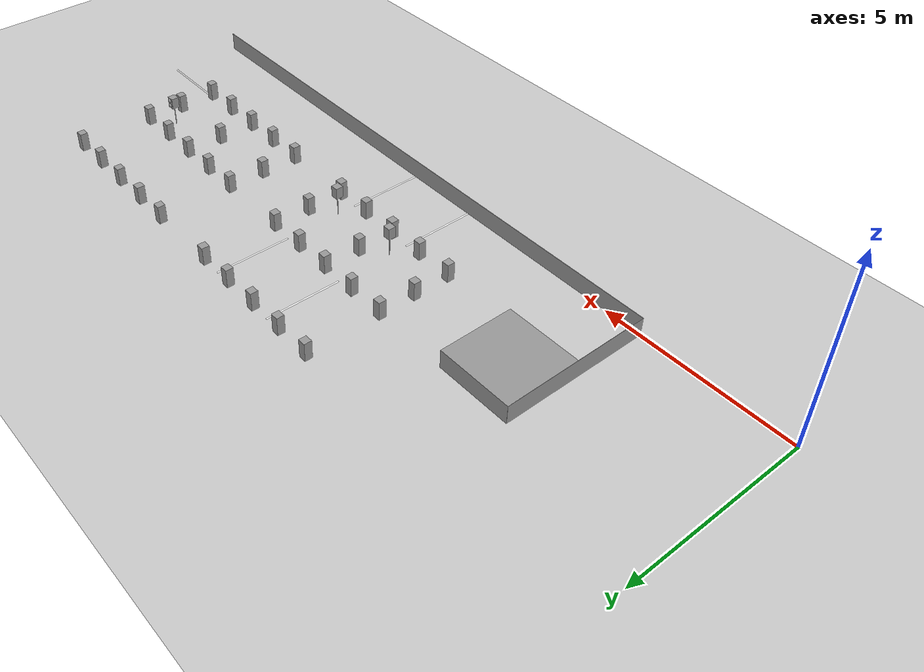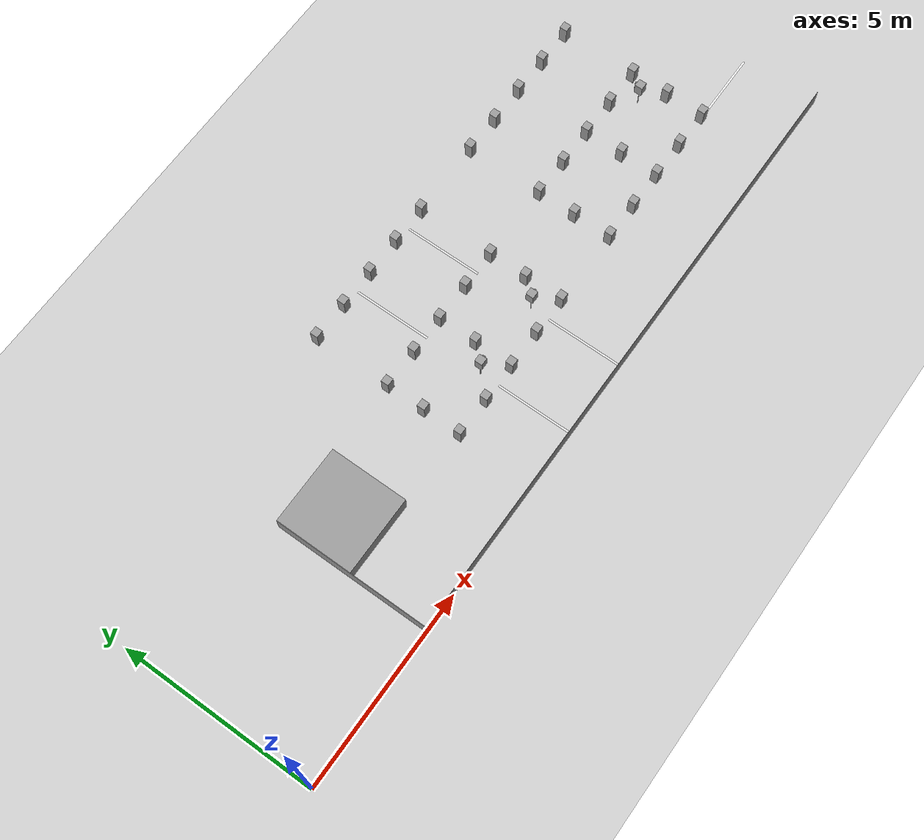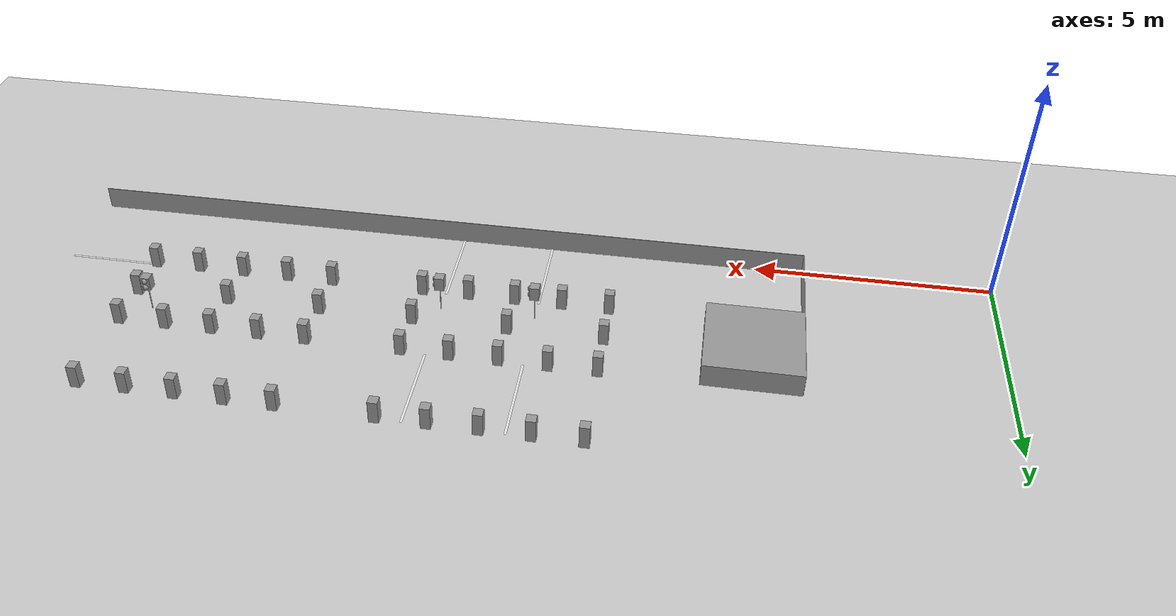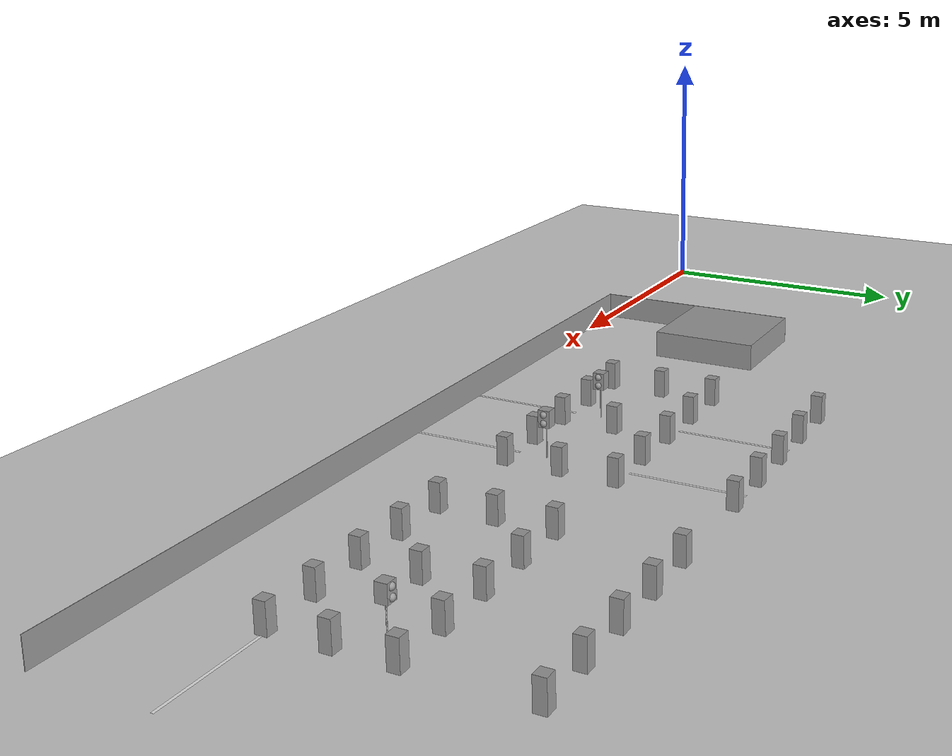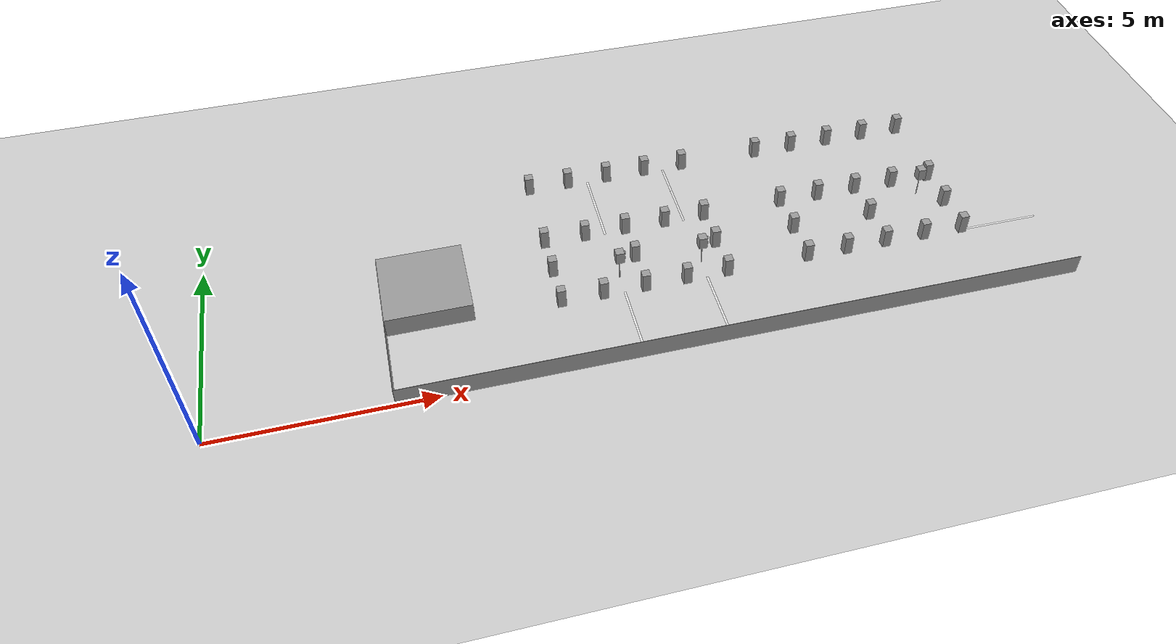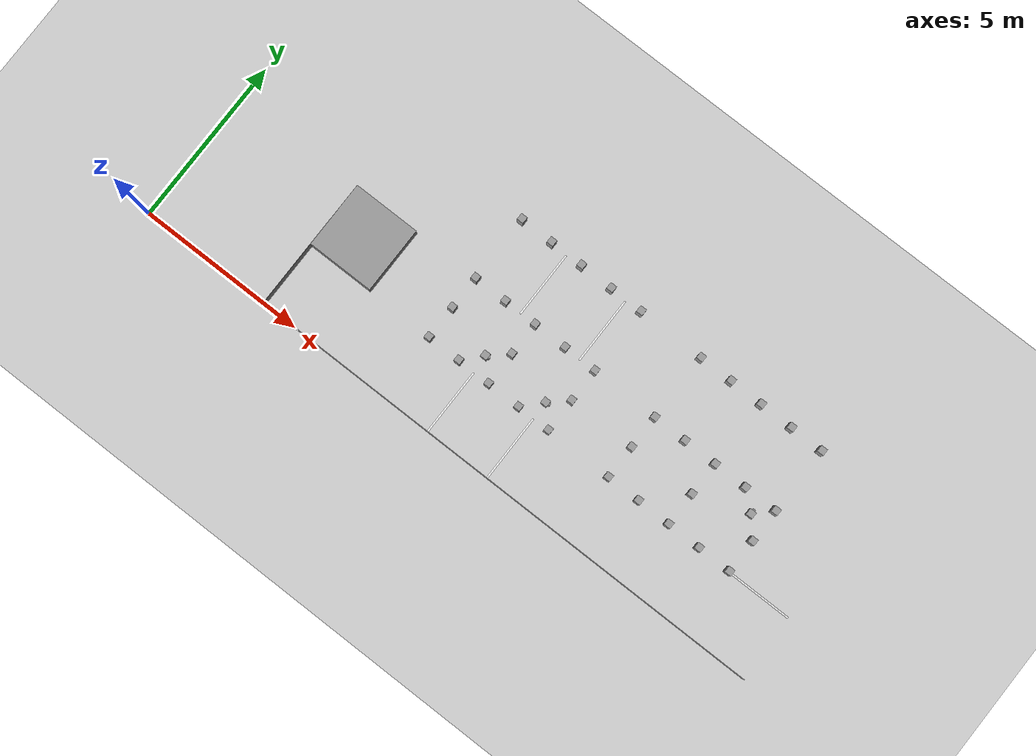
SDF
<sdf version="1.6">
 <world name="default">
  <model name="box_98">
   <pose>5.0 3.0 0.25 0 0 0</pose>
   <link name="link">
    <inertial>
     <mass>1</mass>
     <inertia><ixx>0</ixx><ixy>0</ixy><ixz>0</ixz><iyy>0</iyy><iyz>0</iyz><izz>0</izz></inertia>
    </inertial>
    <collision name="collision"><geometry><box><size>2.0 2.0 0.5</size></box></geometry></collision>
    <visual name="visual">
     <geometry><box><size>2.0 2.0 0.5</size></box></geometry>
     <material>
      <script><name>Gazebo/Grey</name><uri>file://media/materials/scripts/gazebo.material</uri></script>
     </material>
    </visual>
   </link>
   <static>1</static>
  </model>
  <model name="box_96">
   <pose>18.0 6.0 0.25 0 0 0</pose>
   <link name="link">
    <inertial>
     <mass>1</mass>
     <inertia><ixx>0</ixx><ixy>0</ixy><ixz>0</ixz><iyy>0</iyy><iyz>0</iyz><izz>0</izz></inertia>
    </inertial>
    <collision name="collision"><geometry><box><size>0.2 0.2 0.5</size></box></geometry></collision>
    <visual name="visual">
     <geometry><box><size>0.2 0.2 0.5</size></box></geometry>
     <material>
      <script><name>Gazebo/Grey</name><uri>file://media/materials/scripts/gazebo.material</uri></script>
     </material>
    </visual>
   </link>
   <static>1</static>
  </model>
  <model name="box_95">
   <pose>17.0 6.0 0.25 0 0 0</pose>
   <link name="link">
    <inertial>
     <mass>1</mass>
     <inertia><ixx>0</ixx><ixy>0</ixy><ixz>0</ixz><iyy>0</iyy><iyz>0</iyz><izz>0</izz></inertia>
    </inertial>
    <collision name="collision"><geometry><box><size>0.2 0.2 0.5</size></box></geometry></collision>
    <visual name="visual">
     <geometry><box><size>0.2 0.2 0.5</size></box></geometry>
     <material>
      <script><name>Gazebo/Grey</name><uri>file://media/materials/scripts/gazebo.material</uri></script>
     </material>
    </visual>
   </link>
   <static>1</static>
  </model>
  <model name="box_94">
   <pose>16.0 6.0 0.25 0 0 0</pose>
   <link name="link">
    <inertial>
     <mass>1</mass>
     <inertia><ixx>0</ixx><ixy>0</ixy><ixz>0</ixz><iyy>0</iyy><iyz>0</iyz><izz>0</izz></inertia>
    </inertial>
    <collision name="collision"><geometry><box><size>0.2 0.2 0.5</size></box></geometry></collision>
    <visual name="visual">
     <geometry><box><size>0.2 0.2 0.5</size></box></geometry>
     <material>
      <script><name>Gazebo/Grey</name><uri>file://media/materials/scripts/gazebo.material</uri></script>
     </material>
    </visual>
   </link>
   <static>1</static>
  </model>
  <model name="box_88">
   <pose>16.0 6.0 0.25 0 0 0</pose>
   <link name="link">
    <inertial>
     <mass>1</mass>
     <inertia><ixx>0</ixx><ixy>0</ixy><ixz>0</ixz><iyy>0</iyy><iyz>0</iyz><izz>0</izz></inertia>
    </inertial>
    <collision name="collision"><geometry><box><size>0.2 0.2 0.5</size></box></geometry></collision>
    <visual name="visual">
     <geometry><box><size>0.2 0.2 0.5</size></box></geometry>
     <material>
      <script><name>Gazebo/Grey</name><uri>file://media/materials/scripts/gazebo.material</uri></script>
     </material>
    </visual>
   </link>
   <static>1</static>
  </model>
  <model name="box_87">
   <pose>15.0 6.0 0.25 0 0 0</pose>
   <link name="link">
    <inertial>
     <mass>1</mass>
     <inertia><ixx>0</ixx><ixy>0</ixy><ixz>0</ixz><iyy>0</iyy><iyz>0</iyz><izz>0</izz></inertia>
    </inertial>
    <collision name="collision"><geometry><box><size>0.2 0.2 0.5</size></box></geometry></collision>
    <visual name="visual">
     <geometry><box><size>0.2 0.2 0.5</size></box></geometry>
     <material>
      <script><name>Gazebo/Grey</name><uri>file://media/materials/scripts/gazebo.material</uri></script>
     </material>
    </visual>
   </link>
   <static>1</static>
  </model>
  <model name="box_86">
   <pose>14.0 6.0 0.25 0 0 0</pose>
   <link name="link">
    <inertial>
     <mass>1</mass>
     <inertia><ixx>0</ixx><ixy>0</ixy><ixz>0</ixz><iyy>0</iyy><iyz>0</iyz><izz>0</izz></inertia>
    </inertial>
    <collision name="collision"><geometry><box><size>0.2 0.2 0.5</size></box></geometry></collision>
    <visual name="visual">
     <geometry><box><size>0.2 0.2 0.5</size></box></geometry>
     <material>
      <script><name>Gazebo/Grey</name><uri>file://media/materials/scripts/gazebo.material</uri></script>
     </material>
    </visual>
   </link>
   <static>1</static>
  </model>
  <model name="box_80">
   <pose>18.0 2.0 0.25 0 0 0</pose>
   <link name="link">
    <inertial>
     <mass>1</mass>
     <inertia><ixx>0</ixx><ixy>0</ixy><ixz>0</ixz><iyy>0</iyy><iyz>0</iyz><izz>0</izz></inertia>
    </inertial>
    <collision name="collision"><geometry><box><size>0.2 0.2 0.5</size></box></geometry></collision>
    <visual name="visual">
     <geometry><box><size>0.2 0.2 0.5</size></box></geometry>
     <material>
      <script><name>Gazebo/Grey</name><uri>file://media/materials/scripts/gazebo.material</uri></script>
     </material>
    </visual>
   </link>
   <static>1</static>
  </model>
  <model name="box_79">
   <pose>17.0 2.0 0.25 0 0 0</pose>
   <link name="link">
    <inertial>
     <mass>1</mass>
     <inertia><ixx>0</ixx><ixy>0</ixy><ixz>0</ixz><iyy>0</iyy><iyz>0</iyz><izz>0</izz></inertia>
    </inertial>
    <collision name="collision"><geometry><box><size>0.2 0.2 0.5</size></box></geometry></collision>
    <visual name="visual">
     <geometry><box><size>0.2 0.2 0.5</size></box></geometry>
     <material>
      <script><name>Gazebo/Grey</name><uri>file://media/materials/scripts/gazebo.material</uri></script>
     </material>
    </visual>
   </link>
   <static>1</static>
  </model>
  <model name="box_78">
   <pose>16.0 2.0 0.25 0 0 0</pose>
   <link name="link">
    <inertial>
     <mass>1</mass>
     <inertia><ixx>0</ixx><ixy>0</ixy><ixz>0</ixz><iyy>0</iyy><iyz>0</iyz><izz>0</izz></inertia>
    </inertial>
    <collision name="collision"><geometry><box><size>0.2 0.2 0.5</size></box></geometry></collision>
    <visual name="visual">
     <geometry><box><size>0.2 0.2 0.5</size></box></geometry>
     <material>
      <script><name>Gazebo/Grey</name><uri>file://media/materials/scripts/gazebo.material</uri></script>
     </material>
    </visual>
   </link>
   <static>1</static>
  </model>
  <model name="box_77">
   <pose>18.0 3.0 0.25 0 0 0</pose>
   <link name="link">
    <inertial>
     <mass>1</mass>
     <inertia><ixx>0</ixx><ixy>0</ixy><ixz>0</ixz><iyy>0</iyy><iyz>0</iyz><izz>0</izz></inertia>
    </inertial>
    <collision name="collision"><geometry><box><size>0.2 0.2 0.5</size></box></geometry></collision>
    <visual name="visual">
     <geometry><box><size>0.2 0.2 0.5</size></box></geometry>
     <material>
      <script><name>Gazebo/Grey</name><uri>file://media/materials/scripts/gazebo.material</uri></script>
     </material>
    </visual>
   </link>
   <static>1</static>
  </model>
  <model name="box_76">
   <pose>16.0 3.0 0.25 0 0 0</pose>
   <link name="link">
    <inertial>
     <mass>1</mass>
     <inertia><ixx>0</ixx><ixy>0</ixy><ixz>0</ixz><iyy>0</iyy><iyz>0</iyz><izz>0</izz></inertia>
    </inertial>
    <collision name="collision"><geometry><box><size>0.2 0.2 0.5</size></box></geometry></collision>
    <visual name="visual">
     <geometry><box><size>0.2 0.2 0.5</size></box></geometry>
     <material>
      <script><name>Gazebo/Grey</name><uri>file://media/materials/scripts/gazebo.material</uri></script>
     </material>
    </visual>
   </link>
   <static>1</static>
  </model>
  <model name="box_75">
   <pose>18.0 4.0 0.25 0 0 0</pose>
   <link name="link">
    <inertial>
     <mass>1</mass>
     <inertia><ixx>0</ixx><ixy>0</ixy><ixz>0</ixz><iyy>0</iyy><iyz>0</iyz><izz>0</izz></inertia>
    </inertial>
    <collision name="collision"><geometry><box><size>0.2 0.2 0.5</size></box></geometry></collision>
    <visual name="visual">
     <geometry><box><size>0.2 0.2 0.5</size></box></geometry>
     <material>
      <script><name>Gazebo/Grey</name><uri>file://media/materials/scripts/gazebo.material</uri></script>
     </material>
    </visual>
   </link>
   <static>1</static>
  </model>
  <model name="box_74">
   <pose>17.0 4.0 0.25 0 0 0</pose>
   <link name="link">
    <inertial>
     <mass>1</mass>
     <inertia><ixx>0</ixx><ixy>0</ixy><ixz>0</ixz><iyy>0</iyy><iyz>0</iyz><izz>0</izz></inertia>
    </inertial>
    <collision name="collision"><geometry><box><size>0.2 0.2 0.5</size></box></geometry></collision>
    <visual name="visual">
     <geometry><box><size>0.2 0.2 0.5</size></box></geometry>
     <material>
      <script><name>Gazebo/Grey</name><uri>file://media/materials/scripts/gazebo.material</uri></script>
     </material>
    </visual>
   </link>
   <static>1</static>
  </model>
  <model name="box_73">
   <pose>16.0 4.0 0.25 0 0 0</pose>
   <link name="link">
    <inertial>
     <mass>1</mass>
     <inertia><ixx>0</ixx><ixy>0</ixy><ixz>0</ixz><iyy>0</iyy><iyz>0</iyz><izz>0</izz></inertia>
    </inertial>
    <collision name="collision"><geometry><box><size>0.2 0.2 0.5</size></box></geometry></collision>
    <visual name="visual">
     <geometry><box><size>0.2 0.2 0.5</size></box></geometry>
     <material>
      <script><name>Gazebo/Grey</name><uri>file://media/materials/scripts/gazebo.material</uri></script>
     </material>
    </visual>
   </link>
   <static>1</static>
  </model>
  <model name="box_72">
   <pose>16.0 2.0 0.25 0 0 0</pose>
   <link name="link">
    <inertial>
     <mass>1</mass>
     <inertia><ixx>0</ixx><ixy>0</ixy><ixz>0</ixz><iyy>0</iyy><iyz>0</iyz><izz>0</izz></inertia>
    </inertial>
    <collision name="collision"><geometry><box><size>0.2 0.2 0.5</size></box></geometry></collision>
    <visual name="visual">
     <geometry><box><size>0.2 0.2 0.5</size></box></geometry>
     <material>
      <script><name>Gazebo/Grey</name><uri>file://media/materials/scripts/gazebo.material</uri></script>
     </material>
    </visual>
   </link>
   <static>1</static>
  </model>
  <model name="box_71">
   <pose>15.0 2.0 0.25 0 0 0</pose>
   <link name="link">
    <inertial>
     <mass>1</mass>
     <inertia><ixx>0</ixx><ixy>0</ixy><ixz>0</ixz><iyy>0</iyy><iyz>0</iyz><izz>0</izz></inertia>
    </inertial>
    <collision name="collision"><geometry><box><size>0.2 0.2 0.5</size></box></geometry></collision>
    <visual name="visual">
     <geometry><box><size>0.2 0.2 0.5</size></box></geometry>
     <material>
      <script><name>Gazebo/Grey</name><uri>file://media/materials/scripts/gazebo.material</uri></script>
     </material>
    </visual>
   </link>
   <static>1</static>
  </model>
  <model name="box_70">
   <pose>14.0 2.0 0.25 0 0 0</pose>
   <link name="link">
    <inertial>
     <mass>1</mass>
     <inertia><ixx>0</ixx><ixy>0</ixy><ixz>0</ixz><iyy>0</iyy><iyz>0</iyz><izz>0</izz></inertia>
    </inertial>
    <collision name="collision"><geometry><box><size>0.2 0.2 0.5</size></box></geometry></collision>
    <visual name="visual">
     <geometry><box><size>0.2 0.2 0.5</size></box></geometry>
     <material>
      <script><name>Gazebo/Grey</name><uri>file://media/materials/scripts/gazebo.material</uri></script>
     </material>
    </visual>
   </link>
   <static>1</static>
  </model>
  <model name="box_69">
   <pose>16.0 3.0 0.25 0 0 0</pose>
   <link name="link">
    <inertial>
     <mass>1</mass>
     <inertia><ixx>0</ixx><ixy>0</ixy><ixz>0</ixz><iyy>0</iyy><iyz>0</iyz><izz>0</izz></inertia>
    </inertial>
    <collision name="collision"><geometry><box><size>0.2 0.2 0.5</size></box></geometry></collision>
    <visual name="visual">
     <geometry><box><size>0.2 0.2 0.5</size></box></geometry>
     <material>
      <script><name>Gazebo/Grey</name><uri>file://media/materials/scripts/gazebo.material</uri></script>
     </material>
    </visual>
   </link>
   <static>1</static>
  </model>
  <model name="box_68">
   <pose>14.0 3.0 0.25 0 0 0</pose>
   <link name="link">
    <inertial>
     <mass>1</mass>
     <inertia><ixx>0</ixx><ixy>0</ixy><ixz>0</ixz><iyy>0</iyy><iyz>0</iyz><izz>0</izz></inertia>
    </inertial>
    <collision name="collision"><geometry><box><size>0.2 0.2 0.5</size></box></geometry></collision>
    <visual name="visual">
     <geometry><box><size>0.2 0.2 0.5</size></box></geometry>
     <material>
      <script><name>Gazebo/Grey</name><uri>file://media/materials/scripts/gazebo.material</uri></script>
     </material>
    </visual>
   </link>
   <static>1</static>
  </model>
  <model name="box_67">
   <pose>16.0 4.0 0.25 0 0 0</pose>
   <link name="link">
    <inertial>
     <mass>1</mass>
     <inertia><ixx>0</ixx><ixy>0</ixy><ixz>0</ixz><iyy>0</iyy><iyz>0</iyz><izz>0</izz></inertia>
    </inertial>
    <collision name="collision"><geometry><box><size>0.2 0.2 0.5</size></box></geometry></collision>
    <visual name="visual">
     <geometry><box><size>0.2 0.2 0.5</size></box></geometry>
     <material>
      <script><name>Gazebo/Grey</name><uri>file://media/materials/scripts/gazebo.material</uri></script>
     </material>
    </visual>
   </link>
   <static>1</static>
  </model>
  <model name="box_66">
   <pose>15.0 4.0 0.25 0 0 0</pose>
   <link name="link">
    <inertial>
     <mass>1</mass>
     <inertia><ixx>0</ixx><ixy>0</ixy><ixz>0</ixz><iyy>0</iyy><iyz>0</iyz><izz>0</izz></inertia>
    </inertial>
    <collision name="collision"><geometry><box><size>0.2 0.2 0.5</size></box></geometry></collision>
    <visual name="visual">
     <geometry><box><size>0.2 0.2 0.5</size></box></geometry>
     <material>
      <script><name>Gazebo/Grey</name><uri>file://media/materials/scripts/gazebo.material</uri></script>
     </material>
    </visual>
   </link>
   <static>1</static>
  </model>
  <model name="box_65">
   <pose>14.0 4.0 0.25 0 0 0</pose>
   <link name="link">
    <inertial>
     <mass>1</mass>
     <inertia><ixx>0</ixx><ixy>0</ixy><ixz>0</ixz><iyy>0</iyy><iyz>0</iyz><izz>0</izz></inertia>
    </inertial>
    <collision name="collision"><geometry><box><size>0.2 0.2 0.5</size></box></geometry></collision>
    <visual name="visual">
     <geometry><box><size>0.2 0.2 0.5</size></box></geometry>
     <material>
      <script><name>Gazebo/Grey</name><uri>file://media/materials/scripts/gazebo.material</uri></script>
     </material>
    </visual>
   </link>
   <static>1</static>
  </model>
  <model name="box_64">
   <pose>12.0 2.0 0.25 0 0 0</pose>
   <link name="link">
    <inertial>
     <mass>1</mass>
     <inertia><ixx>0</ixx><ixy>0</ixy><ixz>0</ixz><iyy>0</iyy><iyz>0</iyz><izz>0</izz></inertia>
    </inertial>
    <collision name="collision"><geometry><box><size>0.2 0.2 0.5</size></box></geometry></collision>
    <visual name="visual">
     <geometry><box><size>0.2 0.2 0.5</size></box></geometry>
     <material>
      <script><name>Gazebo/Grey</name><uri>file://media/materials/scripts/gazebo.material</uri></script>
     </material>
    </visual>
   </link>
   <static>1</static>
  </model>
  <model name="box_63">
   <pose>11.0 2.0 0.25 0 0 0</pose>
   <link name="link">
    <inertial>
     <mass>1</mass>
     <inertia><ixx>0</ixx><ixy>0</ixy><ixz>0</ixz><iyy>0</iyy><iyz>0</iyz><izz>0</izz></inertia>
    </inertial>
    <collision name="collision"><geometry><box><size>0.2 0.2 0.5</size></box></geometry></collision>
    <visual name="visual">
     <geometry><box><size>0.2 0.2 0.5</size></box></geometry>
     <material>
      <script><name>Gazebo/Grey</name><uri>file://media/materials/scripts/gazebo.material</uri></script>
     </material>
    </visual>
   </link>
   <static>1</static>
  </model>
  <model name="box_62">
   <pose>10.0 2.0 0.25 0 0 0</pose>
   <link name="link">
    <inertial>
     <mass>1</mass>
     <inertia><ixx>0</ixx><ixy>0</ixy><ixz>0</ixz><iyy>0</iyy><iyz>0</iyz><izz>0</izz></inertia>
    </inertial>
    <collision name="collision"><geometry><box><size>0.2 0.2 0.5</size></box></geometry></collision>
    <visual name="visual">
     <geometry><box><size>0.2 0.2 0.5</size></box></geometry>
     <material>
      <script><name>Gazebo/Grey</name><uri>file://media/materials/scripts/gazebo.material</uri></script>
     </material>
    </visual>
   </link>
   <static>1</static>
  </model>
  <model name="box_61">
   <pose>12.0 3.0 0.25 0 0 0</pose>
   <link name="link">
    <inertial>
     <mass>1</mass>
     <inertia><ixx>0</ixx><ixy>0</ixy><ixz>0</ixz><iyy>0</iyy><iyz>0</iyz><izz>0</izz></inertia>
    </inertial>
    <collision name="collision"><geometry><box><size>0.2 0.2 0.5</size></box></geometry></collision>
    <visual name="visual">
     <geometry><box><size>0.2 0.2 0.5</size></box></geometry>
     <material>
      <script><name>Gazebo/Grey</name><uri>file://media/materials/scripts/gazebo.material</uri></script>
     </material>
    </visual>
   </link>
   <static>1</static>
  </model>
  <model name="box_60">
   <pose>10.0 3.0 0.25 0 0 0</pose>
   <link name="link">
    <inertial>
     <mass>1</mass>
     <inertia><ixx>0</ixx><ixy>0</ixy><ixz>0</ixz><iyy>0</iyy><iyz>0</iyz><izz>0</izz></inertia>
    </inertial>
    <collision name="collision"><geometry><box><size>0.2 0.2 0.5</size></box></geometry></collision>
    <visual name="visual">
     <geometry><box><size>0.2 0.2 0.5</size></box></geometry>
     <material>
      <script><name>Gazebo/Grey</name><uri>file://media/materials/scripts/gazebo.material</uri></script>
     </material>
    </visual>
   </link>
   <static>1</static>
  </model>
  <model name="box_59">
   <pose>12.0 4.0 0.25 0 0 0</pose>
   <link name="link">
    <inertial>
     <mass>1</mass>
     <inertia><ixx>0</ixx><ixy>0</ixy><ixz>0</ixz><iyy>0</iyy><iyz>0</iyz><izz>0</izz></inertia>
    </inertial>
    <collision name="collision"><geometry><box><size>0.2 0.2 0.5</size></box></geometry></collision>
    <visual name="visual">
     <geometry><box><size>0.2 0.2 0.5</size></box></geometry>
     <material>
      <script><name>Gazebo/Grey</name><uri>file://media/materials/scripts/gazebo.material</uri></script>
     </material>
    </visual>
   </link>
   <static>1</static>
  </model>
  <model name="box_58">
   <pose>11.0 4.0 0.25 0 0 0</pose>
   <link name="link">
    <inertial>
     <mass>1</mass>
     <inertia><ixx>0</ixx><ixy>0</ixy><ixz>0</ixz><iyy>0</iyy><iyz>0</iyz><izz>0</izz></inertia>
    </inertial>
    <collision name="collision"><geometry><box><size>0.2 0.2 0.5</size></box></geometry></collision>
    <visual name="visual">
     <geometry><box><size>0.2 0.2 0.5</size></box></geometry>
     <material>
      <script><name>Gazebo/Grey</name><uri>file://media/materials/scripts/gazebo.material</uri></script>
     </material>
    </visual>
   </link>
   <static>1</static>
  </model>
  <model name="box_57">
   <pose>10.0 4.0 0.25 0 0 0</pose>
   <link name="link">
    <inertial>
     <mass>1</mass>
     <inertia><ixx>0</ixx><ixy>0</ixy><ixz>0</ixz><iyy>0</iyy><iyz>0</iyz><izz>0</izz></inertia>
    </inertial>
    <collision name="collision"><geometry><box><size>0.2 0.2 0.5</size></box></geometry></collision>
    <visual name="visual">
     <geometry><box><size>0.2 0.2 0.5</size></box></geometry>
     <material>
      <script><name>Gazebo/Grey</name><uri>file://media/materials/scripts/gazebo.material</uri></script>
     </material>
    </visual>
   </link>
   <static>1</static>
  </model>
  <model name="box_56">
   <pose>10.0 2.0 0.25 0 0 0</pose>
   <link name="link">
    <inertial>
     <mass>1</mass>
     <inertia><ixx>0</ixx><ixy>0</ixy><ixz>0</ixz><iyy>0</iyy><iyz>0</iyz><izz>0</izz></inertia>
    </inertial>
    <collision name="collision"><geometry><box><size>0.2 0.2 0.5</size></box></geometry></collision>
    <visual name="visual">
     <geometry><box><size>0.2 0.2 0.5</size></box></geometry>
     <material>
      <script><name>Gazebo/Grey</name><uri>file://media/materials/scripts/gazebo.material</uri></script>
     </material>
    </visual>
   </link>
   <static>1</static>
  </model>
  <model name="box_55">
   <pose>9.0 2.0 0.25 0 0 0</pose>
   <link name="link">
    <inertial>
     <mass>1</mass>
     <inertia><ixx>0</ixx><ixy>0</ixy><ixz>0</ixz><iyy>0</iyy><iyz>0</iyz><izz>0</izz></inertia>
    </inertial>
    <collision name="collision"><geometry><box><size>0.2 0.2 0.5</size></box></geometry></collision>
    <visual name="visual">
     <geometry><box><size>0.2 0.2 0.5</size></box></geometry>
     <material>
      <script><name>Gazebo/Grey</name><uri>file://media/materials/scripts/gazebo.material</uri></script>
     </material>
    </visual>
   </link>
   <static>1</static>
  </model>
  <model name="box_54">
   <pose>8.0 2.0 0.25 0 0 0</pose>
   <link name="link">
    <inertial>
     <mass>1</mass>
     <inertia><ixx>0</ixx><ixy>0</ixy><ixz>0</ixz><iyy>0</iyy><iyz>0</iyz><izz>0</izz></inertia>
    </inertial>
    <collision name="collision"><geometry><box><size>0.2 0.2 0.5</size></box></geometry></collision>
    <visual name="visual">
     <geometry><box><size>0.2 0.2 0.5</size></box></geometry>
     <material>
      <script><name>Gazebo/Grey</name><uri>file://media/materials/scripts/gazebo.material</uri></script>
     </material>
    </visual>
   </link>
   <static>1</static>
  </model>
  <model name="box_53">
   <pose>10.0 3.0 0.25 0 0 0</pose>
   <link name="link">
    <inertial>
     <mass>1</mass>
     <inertia><ixx>0</ixx><ixy>0</ixy><ixz>0</ixz><iyy>0</iyy><iyz>0</iyz><izz>0</izz></inertia>
    </inertial>
    <collision name="collision"><geometry><box><size>0.2 0.2 0.5</size></box></geometry></collision>
    <visual name="visual">
     <geometry><box><size>0.2 0.2 0.5</size></box></geometry>
     <material>
      <script><name>Gazebo/Grey</name><uri>file://media/materials/scripts/gazebo.material</uri></script>
     </material>
    </visual>
   </link>
   <static>1</static>
  </model>
  <model name="box_52">
   <pose>8.0 3.0 0.25 0 0 0</pose>
   <link name="link">
    <inertial>
     <mass>1</mass>
     <inertia><ixx>0</ixx><ixy>0</ixy><ixz>0</ixz><iyy>0</iyy><iyz>0</iyz><izz>0</izz></inertia>
    </inertial>
    <collision name="collision"><geometry><box><size>0.2 0.2 0.5</size></box></geometry></collision>
    <visual name="visual">
     <geometry><box><size>0.2 0.2 0.5</size></box></geometry>
     <material>
      <script><name>Gazebo/Grey</name><uri>file://media/materials/scripts/gazebo.material</uri></script>
     </material>
    </visual>
   </link>
   <static>1</static>
  </model>
  <model name="box_51">
   <pose>10.0 4.0 0.25 0 0 0</pose>
   <link name="link">
    <inertial>
     <mass>1</mass>
     <inertia><ixx>0</ixx><ixy>0</ixy><ixz>0</ixz><iyy>0</iyy><iyz>0</iyz><izz>0</izz></inertia>
    </inertial>
    <collision name="collision"><geometry><box><size>0.2 0.2 0.5</size></box></geometry></collision>
    <visual name="visual">
     <geometry><box><size>0.2 0.2 0.5</size></box></geometry>
     <material>
      <script><name>Gazebo/Grey</name><uri>file://media/materials/scripts/gazebo.material</uri></script>
     </material>
    </visual>
   </link>
   <static>1</static>
  </model>
  <model name="box_50">
   <pose>9.0 4.0 0.25 0 0 0</pose>
   <link name="link">
    <inertial>
     <mass>1</mass>
     <inertia><ixx>0</ixx><ixy>0</ixy><ixz>0</ixz><iyy>0</iyy><iyz>0</iyz><izz>0</izz></inertia>
    </inertial>
    <collision name="collision"><geometry><box><size>0.2 0.2 0.5</size></box></geometry></collision>
    <visual name="visual">
     <geometry><box><size>0.2 0.2 0.5</size></box></geometry>
     <material>
      <script><name>Gazebo/Grey</name><uri>file://media/materials/scripts/gazebo.material</uri></script>
     </material>
    </visual>
   </link>
   <static>1</static>
  </model>
  <model name="box_49">
   <pose>8.0 4.0 0.25 0 0 0</pose>
   <link name="link">
    <inertial>
     <mass>1</mass>
     <inertia><ixx>0</ixx><ixy>0</ixy><ixz>0</ixz><iyy>0</iyy><iyz>0</iyz><izz>0</izz></inertia>
    </inertial>
    <collision name="collision"><geometry><box><size>0.2 0.2 0.5</size></box></geometry></collision>
    <visual name="visual">
     <geometry><box><size>0.2 0.2 0.5</size></box></geometry>
     <material>
      <script><name>Gazebo/Grey</name><uri>file://media/materials/scripts/gazebo.material</uri></script>
     </material>
    </visual>
   </link>
   <static>1</static>
  </model>
  <model name="box_48">
   <pose>12.0 6.0 0.25 0 0 0</pose>
   <link name="link">
    <inertial>
     <mass>1</mass>
     <inertia><ixx>0</ixx><ixy>0</ixy><ixz>0</ixz><iyy>0</iyy><iyz>0</iyz><izz>0</izz></inertia>
    </inertial>
    <collision name="collision"><geometry><box><size>0.2 0.2 0.5</size></box></geometry></collision>
    <visual name="visual">
     <geometry><box><size>0.2 0.2 0.5</size></box></geometry>
     <material>
      <script><name>Gazebo/Grey</name><uri>file://media/materials/scripts/gazebo.material</uri></script>
     </material>
    </visual>
   </link>
   <static>1</static>
  </model>
  <model name="box_47">
   <pose>11.0 6.0 0.25 0 0 0</pose>
   <link name="link">
    <inertial>
     <mass>1</mass>
     <inertia><ixx>0</ixx><ixy>0</ixy><ixz>0</ixz><iyy>0</iyy><iyz>0</iyz><izz>0</izz></inertia>
    </inertial>
    <collision name="collision"><geometry><box><size>0.2 0.2 0.5</size></box></geometry></collision>
    <visual name="visual">
     <geometry><box><size>0.2 0.2 0.5</size></box></geometry>
     <material>
      <script><name>Gazebo/Grey</name><uri>file://media/materials/scripts/gazebo.material</uri></script>
     </material>
    </visual>
   </link>
   <static>1</static>
  </model>
  <model name="box_46">
   <pose>10.0 6.0 0.25 0 0 0</pose>
   <link name="link">
    <inertial>
     <mass>1</mass>
     <inertia><ixx>0</ixx><ixy>0</ixy><ixz>0</ixz><iyy>0</iyy><iyz>0</iyz><izz>0</izz></inertia>
    </inertial>
    <collision name="collision"><geometry><box><size>0.2 0.2 0.5</size></box></geometry></collision>
    <visual name="visual">
     <geometry><box><size>0.2 0.2 0.5</size></box></geometry>
     <material>
      <script><name>Gazebo/Grey</name><uri>file://media/materials/scripts/gazebo.material</uri></script>
     </material>
    </visual>
   </link>
   <static>1</static>
  </model>
  <model name="box_40">
   <pose>10.0 6.0 0.25 0 0 0</pose>
   <link name="link">
    <inertial>
     <mass>1</mass>
     <inertia><ixx>0</ixx><ixy>0</ixy><ixz>0</ixz><iyy>0</iyy><iyz>0</iyz><izz>0</izz></inertia>
    </inertial>
    <collision name="collision"><geometry><box><size>0.2 0.2 0.5</size></box></geometry></collision>
    <visual name="visual">
     <geometry><box><size>0.2 0.2 0.5</size></box></geometry>
     <material>
      <script><name>Gazebo/Grey</name><uri>file://media/materials/scripts/gazebo.material</uri></script>
     </material>
    </visual>
   </link>
   <static>1</static>
  </model>
  <model name="box_39">
   <pose>9.0 6.0 0.25 0 0 0</pose>
   <link name="link">
    <inertial>
     <mass>1</mass>
     <inertia><ixx>0</ixx><ixy>0</ixy><ixz>0</ixz><iyy>0</iyy><iyz>0</iyz><izz>0</izz></inertia>
    </inertial>
    <collision name="collision"><geometry><box><size>0.2 0.2 0.5</size></box></geometry></collision>
    <visual name="visual">
     <geometry><box><size>0.2 0.2 0.5</size></box></geometry>
     <material>
      <script><name>Gazebo/Grey</name><uri>file://media/materials/scripts/gazebo.material</uri></script>
     </material>
    </visual>
   </link>
   <static>1</static>
  </model>
  <model name="box_38">
   <pose>8.0 6.0 0.25 0 0 0</pose>
   <link name="link">
    <inertial>
     <mass>1</mass>
     <inertia><ixx>0</ixx><ixy>0</ixy><ixz>0</ixz><iyy>0</iyy><iyz>0</iyz><izz>0</izz></inertia>
    </inertial>
    <collision name="collision"><geometry><box><size>0.2 0.2 0.5</size></box></geometry></collision>
    <visual name="visual">
     <geometry><box><size>0.2 0.2 0.5</size></box></geometry>
     <material>
      <script><name>Gazebo/Grey</name><uri>file://media/materials/scripts/gazebo.material</uri></script>
     </material>
    </visual>
   </link>
   <static>1</static>
  </model>
  <model name="box_7">
   <pose>12.0 0.0 0.25 0 0 -3.141592653589793</pose>
   <link name="link">
    <inertial>
     <mass>1</mass>
     <inertia><ixx>0</ixx><ixy>0</ixy><ixz>0</ixz><iyy>0</iyy><iyz>0</iyz><izz>0</izz></inertia>
    </inertial>
    <collision name="collision"><geometry><box><size>16.0 0.01 0.5</size></box></geometry></collision>
    <visual name="visual">
     <geometry><box><size>16.0 0.01 0.5</size></box></geometry>
     <material>
      <script><name>Gazebo/Grey</name><uri>file://media/materials/scripts/gazebo.material</uri></script>
     </material>
    </visual>
   </link>
   <static>1</static>
  </model>
  <model name="box_4">
   <pose>4.0 2.0 0.25 0 0 1.5707963267948966</pose>
   <link name="link">
    <inertial>
     <mass>1</mass>
     <inertia><ixx>0</ixx><ixy>0</ixy><ixz>0</ixz><iyy>0</iyy><iyz>0</iyz><izz>0</izz></inertia>
    </inertial>
    <collision name="collision"><geometry><box><size>4.0 0.01 0.5</size></box></geometry></collision>
    <visual name="visual">
     <geometry><box><size>4.0 0.01 0.5</size></box></geometry>
     <material>
      <script><name>Gazebo/Grey</name><uri>file://media/materials/scripts/gazebo.material</uri></script>
     </material>
    </visual>
   </link>
   <static>1</static>
  </model>
  <model name="tl_line_6">
   <static>1</static>
   <pose>9.5 5.0 0.001 0 0 1.5707963267948966</pose>
   <link name="link">
    <collision name="collision">
     <geometry><plane><normal>0 0 1</normal><size>2.0 0.05</size></plane></geometry>
     <surface><friction><ode><mu>100</mu><mu2>50</mu2></ode></friction></surface>
    </collision>
    <visual name="visual">
     <geometry><plane><normal>0 0 1</normal><size>2.0 0.05</size></plane></geometry>
     <material>
      <script><name>Gazebo/White</name><uri>file://media/materials/scripts/gazebo.material</uri></script>
     </material>
    </visual>
   </link>
  </model>
  <model name="tl_line_5">
   <static>1</static>
   <pose>11.5 5.0 0.001 0 0 1.5707963267948966</pose>
   <link name="link">
    <collision name="collision">
     <geometry><plane><normal>0 0 1</normal><size>2.0 0.05</size></plane></geometry>
     <surface><friction><ode><mu>100</mu><mu2>50</mu2></ode></friction></surface>
    </collision>
    <visual name="visual">
     <geometry><plane><normal>0 0 1</normal><size>2.0 0.05</size></plane></geometry>
     <material>
      <script><name>Gazebo/White</name><uri>file://media/materials/scripts/gazebo.material</uri></script>
     </material>
    </visual>
   </link>
  </model>
  <model name="tl_line_4">
   <static>1</static>
   <pose>9.5 1.0 0.001 0 0 1.5707963267948966</pose>
   <link name="link">
    <collision name="collision">
     <geometry><plane><normal>0 0 1</normal><size>2.0 0.05</size></plane></geometry>
     <surface><friction><ode><mu>100</mu><mu2>50</mu2></ode></friction></surface>
    </collision>
    <visual name="visual">
     <geometry><plane><normal>0 0 1</normal><size>2.0 0.05</size></plane></geometry>
     <material>
      <script><name>Gazebo/White</name><uri>file://media/materials/scripts/gazebo.material</uri></script>
     </material>
    </visual>
   </link>
  </model>
  <include>
   <uri>model://traffic-light</uri>
   <name>traffic_light_4</name>
   <pose>9.5 2.5 0 0 0 1.5707963267948966</pose>
  </include>
  <model name="tl_line_3">
   <static>1</static>
   <pose>11.5 1.0 0.001 0 0 1.5707963267948966</pose>
   <link name="link">
    <collision name="collision">
     <geometry><plane><normal>0 0 1</normal><size>2.0 0.05</size></plane></geometry>
     <surface><friction><ode><mu>100</mu><mu2>50</mu2></ode></friction></surface>
    </collision>
    <visual name="visual">
     <geometry><plane><normal>0 0 1</normal><size>2.0 0.05</size></plane></geometry>
     <material>
      <script><name>Gazebo/White</name><uri>file://media/materials/scripts/gazebo.material</uri></script>
     </material>
    </visual>
   </link>
  </model>
  <include>
   <uri>model://traffic-light</uri>
   <name>traffic_light_3</name>
   <pose>11.5 2.5 0 0 0 1.5707963267948966</pose>
  </include>
  <model name="tl_line_2">
   <static>1</static>
   <pose>19.0 2.0 0.001 0 0 3.141592653589793</pose>
   <link name="link">
    <collision name="collision">
     <geometry><plane><normal>0 0 1</normal><size>2.0 0.05</size></plane></geometry>
     <surface><friction><ode><mu>100</mu><mu2>50</mu2></ode></friction></surface>
    </collision>
    <visual name="visual">
     <geometry><plane><normal>0 0 1</normal><size>2.0 0.05</size></plane></geometry>
     <material>
      <script><name>Gazebo/White</name><uri>file://media/materials/scripts/gazebo.material</uri></script>
     </material>
    </visual>
   </link>
  </model>
  <include>
   <uri>model://traffic-light</uri>
   <name>traffic_light_2</name>
   <pose>17.5 3.5 0 0 0 3.141592653589793</pose>
  </include>
  <model name="tl_line_1">
   <static>1</static>
   <pose>11.5 5.0 0.001 0 0 1.5707963267948966</pose>
   <link name="link">
    <collision name="collision">
     <geometry><plane><normal>0 0 1</normal><size>2.0 0.05</size></plane></geometry>
     <surface><friction><ode><mu>100</mu><mu2>50</mu2></ode></friction></surface>
    </collision>
    <visual name="visual">
     <geometry><plane><normal>0 0 1</normal><size>2.0 0.05</size></plane></geometry>
     <material>
      <script><name>Gazebo/White</name><uri>file://media/materials/scripts/gazebo.material</uri></script>
     </material>
    </visual>
   </link>
  </model>
  <model name="ground_plane">
   <static>1</static>
   <link name="link">
    <collision name="collision">
     <geometry><plane><normal>0 0 1</normal><size>100 100</size></plane></geometry>
     <surface>
      <contact><collide_bitmask>65535</collide_bitmask></contact>
      <friction><ode><mu>100</mu><mu2>50</mu2></ode></friction>
     </surface>
    </collision>
    <visual name="visual">
     <cast_shadows>0</cast_shadows>
     <geometry><plane><normal>0 0 1</normal><size>100 100</size></plane></geometry>
     <material>
      <script><uri>file://media/materials/scripts/gazebo.material</uri><name>Gazebo/Grey</name></script>
     </material>
    </visual>
   </link>
  </model>
 </world>
</sdf>
